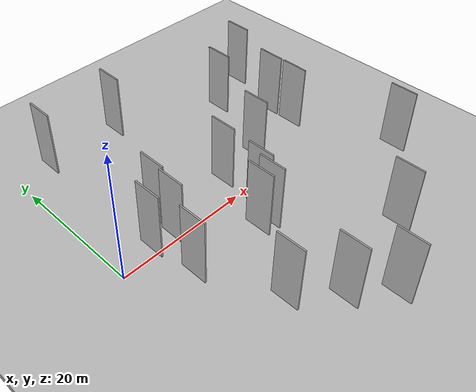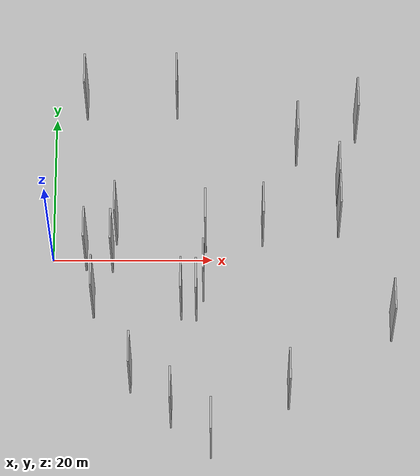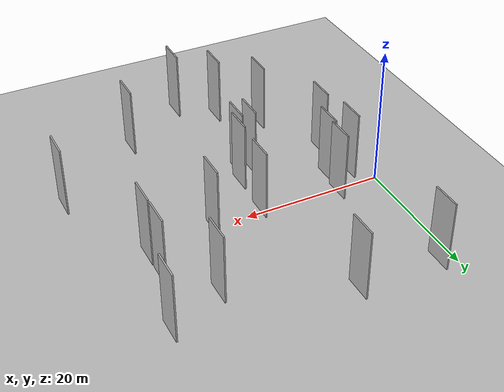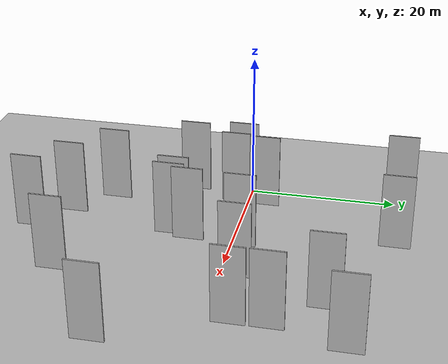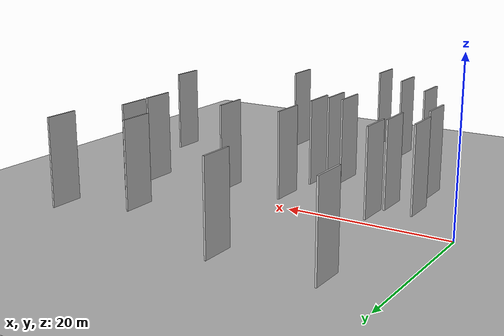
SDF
<?xml version="1.0" encoding="utf-8"?>

<sdf version="1.6">

   <world name="default">

      <gui fullscreen="0">

         <camera name="user_camera">

            <pose>-15 0 4.57585 0 0 0</pose>

            <view_controller>orbit</view_controller>

         </camera>

      </gui>

      <scene>

         <sky>

           <clouds>

             <speed>12</speed>

           </clouds>

         </sky>

         <ambient>0.4 0.4 0.4 1</ambient>

         <background>0.7 0.7 0.7 1</background>

         <shadows>1</shadows>

      </scene>

      <gravity>0 0 -9.8066</gravity>

      <magnetic_field>6e-06 2.3e-05 -4.2e-05</magnetic_field>

      <physics default="0" name="default_physics" type="ode">

         <ode>

            <solver>

               <type>quick</type>

               <iters>10</iters>

               <sor>1.0</sor>

               <use_dynamic_moi_rescaling>0</use_dynamic_moi_rescaling>

            </solver>

            <constraints>

               <cfm>0</cfm>

               <erp>0.2</erp>

               <contact_max_correcting_vel>100</contact_max_correcting_vel>

               <contact_surface_layer>0.001</contact_surface_layer>

            </constraints>

         </ode>

         <max_step_size>0.004</max_step_size>

         <real_time_factor>1</real_time_factor>

         <real_time_update_rate>250</real_time_update_rate>

      </physics>

      <light name="sun" type="directional">

         <cast_shadows>1</cast_shadows>

         <pose>0 0 10 0 0 0</pose>

         <diffuse>0.8 0.8 0.8 1</diffuse>

         <specular>0.2 0.2 0.2 1</specular>

         <attenuation>

            <range>1000</range>

            <constant>0.9</constant>

            <linear>0.01</linear>

            <quadratic>0.001</quadratic>

         </attenuation>

         <direction>-0.5 0.1 -0.9</direction>

      </light>

      <include>

         <name>ground_plane_1</name>

         <uri>model://HANNAS_ground_plane</uri>

         <pose>0 0 0  0 0 0</pose>

      </include>

      <include>

         <name>ground_plane_2</name>

         <uri>model://HANNAS_ground_plane</uri>

         <pose>100 0 0  0 0 0</pose>

      </include>

      <model name="HANNAS_wall_1">

         <static>1</static>

         <pose frame="">17.9819 -7.4302 2.5 0.000000 0.000000 1.570796</pose>

         <link name="link">

            <pose frame="">0 0 5.00 0 0 0</pose>

            <collision name="collision">

               <geometry>

                  <box>

                     <size>4.00 0.2 10.00</size>

                  </box>

               </geometry>

               <max_contacts>10</max_contacts>

               <surface>

                  <contact>

                     <ode/>

                  </contact>

                  <bounce/>

                  <friction>

                     <torsional>

                        <ode/>

                     </torsional>

                     <ode/>

                  </friction>

               </surface>

            </collision>

            <visual name="visual">

               <cast_shadows>0</cast_shadows>

               <geometry>

                  <box>

                     <size>4.00 0.2 10.00</size>

                  </box>

               </geometry>

               <material>

                  <script>

                     <uri>model://HANNAS_wall/materials/scripts</uri>

                     <uri>model://HANNAS_wall/materials/textures</uri>

                     <name>vrc/HANNAS_wall</name>

                  </script>

               </material>

            </visual>

            <self_collide>0</self_collide>

            <enable_wind>0</enable_wind>

            <kinematic>0</kinematic>

         </link>

      </model>

      <model name="HANNAS_wall_2">

         <static>1</static>

         <pose frame="">26.2540 2.7320 2.5 0.000000 0.000000 1.570796</pose>

         <link name="link">

            <pose frame="">0 0 5.00 0 0 0</pose>

            <collision name="collision">

               <geometry>

                  <box>

                     <size>4.00 0.2 10.00</size>

                  </box>

               </geometry>

               <max_contacts>10</max_contacts>

               <surface>

                  <contact>

                     <ode/>

                  </contact>

                  <bounce/>

                  <friction>

                     <torsional>

                        <ode/>

                     </torsional>

                     <ode/>

                  </friction>

               </surface>

            </collision>

            <visual name="visual">

               <cast_shadows>0</cast_shadows>

               <geometry>

                  <box>

                     <size>4.00 0.2 10.00</size>

                  </box>

               </geometry>

               <material>

                  <script>

                     <uri>model://HANNAS_wall/materials/scripts</uri>

                     <uri>model://HANNAS_wall/materials/textures</uri>

                     <name>vrc/HANNAS_wall</name>

                  </script>

               </material>

            </visual>

            <self_collide>0</self_collide>

            <enable_wind>0</enable_wind>

            <kinematic>0</kinematic>

         </link>

      </model>

      <model name="HANNAS_wall_3">

         <static>1</static>

         <pose frame="">7.5786 -0.8188 2.5 0.000000 0.000000 1.570796</pose>

         <link name="link">

            <pose frame="">0 0 5.00 0 0 0</pose>

            <collision name="collision">

               <geometry>

                  <box>

                     <size>4.00 0.2 10.00</size>

                  </box>

               </geometry>

               <max_contacts>10</max_contacts>

               <surface>

                  <contact>

                     <ode/>

                  </contact>

                  <bounce/>

                  <friction>

                     <torsional>

                        <ode/>

                     </torsional>

                     <ode/>

                  </friction>

               </surface>

            </collision>

            <visual name="visual">

               <cast_shadows>0</cast_shadows>

               <geometry>

                  <box>

                     <size>4.00 0.2 10.00</size>

                  </box>

               </geometry>

               <material>

                  <script>

                     <uri>model://HANNAS_wall/materials/scripts</uri>

                     <uri>model://HANNAS_wall/materials/textures</uri>

                     <name>vrc/HANNAS_wall</name>

                  </script>

               </material>

            </visual>

            <self_collide>0</self_collide>

            <enable_wind>0</enable_wind>

            <kinematic>0</kinematic>

         </link>

      </model>

      <model name="HANNAS_wall_4">

         <static>1</static>

         <pose frame="">19.1340 1.9223 2.5 0.000000 0.000000 1.570796</pose>

         <link name="link">

            <pose frame="">0 0 5.00 0 0 0</pose>

            <collision name="collision">

               <geometry>

                  <box>

                     <size>4.00 0.2 10.00</size>

                  </box>

               </geometry>

               <max_contacts>10</max_contacts>

               <surface>

                  <contact>

                     <ode/>

                  </contact>

                  <bounce/>

                  <friction>

                     <torsional>

                        <ode/>

                     </torsional>

                     <ode/>

                  </friction>

               </surface>

            </collision>

            <visual name="visual">

               <cast_shadows>0</cast_shadows>

               <geometry>

                  <box>

                     <size>4.00 0.2 10.00</size>

                  </box>

               </geometry>

               <material>

                  <script>

                     <uri>model://HANNAS_wall/materials/scripts</uri>

                     <uri>model://HANNAS_wall/materials/textures</uri>

                     <name>vrc/HANNAS_wall</name>

                  </script>

               </material>

            </visual>

            <self_collide>0</self_collide>

            <enable_wind>0</enable_wind>

            <kinematic>0</kinematic>

         </link>

      </model>

      <model name="HANNAS_wall_5">

         <static>1</static>

         <pose frame="">35.7650 3.9659 2.5 0.000000 0.000000 1.570796</pose>

         <link name="link">

            <pose frame="">0 0 5.00 0 0 0</pose>

            <collision name="collision">

               <geometry>

                  <box>

                     <size>4.00 0.2 10.00</size>

                  </box>

               </geometry>

               <max_contacts>10</max_contacts>

               <surface>

                  <contact>

                     <ode/>

                  </contact>

                  <bounce/>

                  <friction>

                     <torsional>

                        <ode/>

                     </torsional>

                     <ode/>

                  </friction>

               </surface>

            </collision>

            <visual name="visual">

               <cast_shadows>0</cast_shadows>

               <geometry>

                  <box>

                     <size>4.00 0.2 10.00</size>

                  </box>

               </geometry>

               <material>

                  <script>

                     <uri>model://HANNAS_wall/materials/scripts</uri>

                     <uri>model://HANNAS_wall/materials/textures</uri>

                     <name>vrc/HANNAS_wall</name>

                  </script>

               </material>

            </visual>

            <self_collide>0</self_collide>

            <enable_wind>0</enable_wind>

            <kinematic>0</kinematic>

         </link>

      </model>

      <model name="HANNAS_wall_6">

         <static>1</static>

         <pose frame="">9.9656 -16.9954 2.5 0.000000 0.000000 1.570796</pose>

         <link name="link">

            <pose frame="">0 0 5.00 0 0 0</pose>

            <collision name="collision">

               <geometry>

                  <box>

                     <size>4.00 0.2 10.00</size>

                  </box>

               </geometry>

               <max_contacts>10</max_contacts>

               <surface>

                  <contact>

                     <ode/>

                  </contact>

                  <bounce/>

                  <friction>

                     <torsional>

                        <ode/>

                     </torsional>

                     <ode/>

                  </friction>

               </surface>

            </collision>

            <visual name="visual">

               <cast_shadows>0</cast_shadows>

               <geometry>

                  <box>

                     <size>4.00 0.2 10.00</size>

                  </box>

               </geometry>

               <material>

                  <script>

                     <uri>model://HANNAS_wall/materials/scripts</uri>

                     <uri>model://HANNAS_wall/materials/textures</uri>

                     <name>vrc/HANNAS_wall</name>

                  </script>

               </material>

            </visual>

            <self_collide>0</self_collide>

            <enable_wind>0</enable_wind>

            <kinematic>0</kinematic>

         </link>

      </model>

      <model name="HANNAS_wall_7">

         <static>1</static>

         <pose frame="">4.3015 -0.4936 2.5 0.000000 0.000000 1.570796</pose>

         <link name="link">

            <pose frame="">0 0 5.00 0 0 0</pose>

            <collision name="collision">

               <geometry>

                  <box>

                     <size>4.00 0.2 10.00</size>

                  </box>

               </geometry>

               <max_contacts>10</max_contacts>

               <surface>

                  <contact>

                     <ode/>

                  </contact>

                  <bounce/>

                  <friction>

                     <torsional>

                        <ode/>

                     </torsional>

                     <ode/>

                  </friction>

               </surface>

            </collision>

            <visual name="visual">

               <cast_shadows>0</cast_shadows>

               <geometry>

                  <box>

                     <size>4.00 0.2 10.00</size>

                  </box>

               </geometry>

               <material>

                  <script>

                     <uri>model://HANNAS_wall/materials/scripts</uri>

                     <uri>model://HANNAS_wall/materials/textures</uri>

                     <name>vrc/HANNAS_wall</name>

                  </script>

               </material>

            </visual>

            <self_collide>0</self_collide>

            <enable_wind>0</enable_wind>

            <kinematic>0</kinematic>

         </link>

      </model>

      <model name="HANNAS_wall_8">

         <static>1</static>

         <pose frame="">8.0327 3.0048 2.5 0.000000 0.000000 1.570796</pose>

         <link name="link">

            <pose frame="">0 0 5.00 0 0 0</pose>

            <collision name="collision">

               <geometry>

                  <box>

                     <size>4.00 0.2 10.00</size>

                  </box>

               </geometry>

               <max_contacts>10</max_contacts>

               <surface>

                  <contact>

                     <ode/>

                  </contact>

                  <bounce/>

                  <friction>

                     <torsional>

                        <ode/>

                     </torsional>

                     <ode/>

                  </friction>

               </surface>

            </collision>

            <visual name="visual">

               <cast_shadows>0</cast_shadows>

               <geometry>

                  <box>

                     <size>4.00 0.2 10.00</size>

                  </box>

               </geometry>

               <material>

                  <script>

                     <uri>model://HANNAS_wall/materials/scripts</uri>

                     <uri>model://HANNAS_wall/materials/textures</uri>

                     <name>vrc/HANNAS_wall</name>

                  </script>

               </material>

            </visual>

            <self_collide>0</self_collide>

            <enable_wind>0</enable_wind>

            <kinematic>0</kinematic>

         </link>

      </model>

      <model name="HANNAS_wall_9">

         <static>1</static>

         <pose frame="">18.8699 -4.8284 2.5 0.000000 0.000000 1.570796</pose>

         <link name="link">

            <pose frame="">0 0 5.00 0 0 0</pose>

            <collision name="collision">

               <geometry>

                  <box>

                     <size>4.00 0.2 10.00</size>

                  </box>

               </geometry>

               <max_contacts>10</max_contacts>

               <surface>

                  <contact>

                     <ode/>

                  </contact>

                  <bounce/>

                  <friction>

                     <torsional>

                        <ode/>

                     </torsional>

                     <ode/>

                  </friction>

               </surface>

            </collision>

            <visual name="visual">

               <cast_shadows>0</cast_shadows>

               <geometry>

                  <box>

                     <size>4.00 0.2 10.00</size>

                  </box>

               </geometry>

               <material>

                  <script>

                     <uri>model://HANNAS_wall/materials/scripts</uri>

                     <uri>model://HANNAS_wall/materials/textures</uri>

                     <name>vrc/HANNAS_wall</name>

                  </script>

               </material>

            </visual>

            <self_collide>0</self_collide>

            <enable_wind>0</enable_wind>

            <kinematic>0</kinematic>

         </link>

      </model>

      <model name="HANNAS_wall_10">

         <static>1</static>

         <pose frame="">16.1311 -7.2977 2.5 0.000000 0.000000 1.570796</pose>

         <link name="link">

            <pose frame="">0 0 5.00 0 0 0</pose>

            <collision name="collision">

               <geometry>

                  <box>

                     <size>4.00 0.2 10.00</size>

                  </box>

               </geometry>

               <max_contacts>10</max_contacts>

               <surface>

                  <contact>

                     <ode/>

                  </contact>

                  <bounce/>

                  <friction>

                     <torsional>

                        <ode/>

                     </torsional>

                     <ode/>

                  </friction>

               </surface>

            </collision>

            <visual name="visual">

               <cast_shadows>0</cast_shadows>

               <geometry>

                  <box>

                     <size>4.00 0.2 10.00</size>

                  </box>

               </geometry>

               <material>

                  <script>

                     <uri>model://HANNAS_wall/materials/scripts</uri>

                     <uri>model://HANNAS_wall/materials/textures</uri>

                     <name>vrc/HANNAS_wall</name>

                  </script>

               </material>

            </visual>

            <self_collide>0</self_collide>

            <enable_wind>0</enable_wind>

            <kinematic>0</kinematic>

         </link>

      </model>

      <model name="HANNAS_wall_11">

         <static>1</static>

         <pose frame="">15.5418 20.9230 2.5 0.000000 0.000000 1.570796</pose>

         <link name="link">

            <pose frame="">0 0 5.00 0 0 0</pose>

            <collision name="collision">

               <geometry>

                  <box>

                     <size>4.00 0.2 10.00</size>

                  </box>

               </geometry>

               <max_contacts>10</max_contacts>

               <surface>

                  <contact>

                     <ode/>

                  </contact>

                  <bounce/>

                  <friction>

                     <torsional>

                        <ode/>

                     </torsional>

                     <ode/>

                  </friction>

               </surface>

            </collision>

            <visual name="visual">

               <cast_shadows>0</cast_shadows>

               <geometry>

                  <box>

                     <size>4.00 0.2 10.00</size>

                  </box>

               </geometry>

               <material>

                  <script>

                     <uri>model://HANNAS_wall/materials/scripts</uri>

                     <uri>model://HANNAS_wall/materials/textures</uri>

                     <name>vrc/HANNAS_wall</name>

                  </script>

               </material>

            </visual>

            <self_collide>0</self_collide>

            <enable_wind>0</enable_wind>

            <kinematic>0</kinematic>

         </link>

      </model>

      <model name="HANNAS_wall_12">

         <static>1</static>

         <pose frame="">30.6517 14.0721 2.5 0.000000 0.000000 1.570796</pose>

         <link name="link">

            <pose frame="">0 0 5.00 0 0 0</pose>

            <collision name="collision">

               <geometry>

                  <box>

                     <size>4.00 0.2 10.00</size>

                  </box>

               </geometry>

               <max_contacts>10</max_contacts>

               <surface>

                  <contact>

                     <ode/>

                  </contact>

                  <bounce/>

                  <friction>

                     <torsional>

                        <ode/>

                     </torsional>

                     <ode/>

                  </friction>

               </surface>

            </collision>

            <visual name="visual">

               <cast_shadows>0</cast_shadows>

               <geometry>

                  <box>

                     <size>4.00 0.2 10.00</size>

                  </box>

               </geometry>

               <material>

                  <script>

                     <uri>model://HANNAS_wall/materials/scripts</uri>

                     <uri>model://HANNAS_wall/materials/textures</uri>

                     <name>vrc/HANNAS_wall</name>

                  </script>

               </material>

            </visual>

            <self_collide>0</self_collide>

            <enable_wind>0</enable_wind>

            <kinematic>0</kinematic>

         </link>

      </model>

      <model name="HANNAS_wall_13">

         <static>1</static>

         <pose frame="">38.2051 17.3621 2.5 0.000000 0.000000 1.570796</pose>

         <link name="link">

            <pose frame="">0 0 5.00 0 0 0</pose>

            <collision name="collision">

               <geometry>

                  <box>

                     <size>4.00 0.2 10.00</size>

                  </box>

               </geometry>

               <max_contacts>10</max_contacts>

               <surface>

                  <contact>

                     <ode/>

                  </contact>

                  <bounce/>

                  <friction>

                     <torsional>

                        <ode/>

                     </torsional>

                     <ode/>

                  </friction>

               </surface>

            </collision>

            <visual name="visual">

               <cast_shadows>0</cast_shadows>

               <geometry>

                  <box>

                     <size>4.00 0.2 10.00</size>

                  </box>

               </geometry>

               <material>

                  <script>

                     <uri>model://HANNAS_wall/materials/scripts</uri>

                     <uri>model://HANNAS_wall/materials/textures</uri>

                     <name>vrc/HANNAS_wall</name>

                  </script>

               </material>

            </visual>

            <self_collide>0</self_collide>

            <enable_wind>0</enable_wind>

            <kinematic>0</kinematic>

         </link>

      </model>

      <model name="HANNAS_wall_14">

         <static>1</static>

         <pose frame="">19.7613 -25.5231 2.5 0.000000 0.000000 1.570796</pose>

         <link name="link">

            <pose frame="">0 0 5.00 0 0 0</pose>

            <collision name="collision">

               <geometry>

                  <box>

                     <size>4.00 0.2 10.00</size>

                  </box>

               </geometry>

               <max_contacts>10</max_contacts>

               <surface>

                  <contact>

                     <ode/>

                  </contact>

                  <bounce/>

                  <friction>

                     <torsional>

                        <ode/>

                     </torsional>

                     <ode/>

                  </friction>

               </surface>

            </collision>

            <visual name="visual">

               <cast_shadows>0</cast_shadows>

               <geometry>

                  <box>

                     <size>4.00 0.2 10.00</size>

                  </box>

               </geometry>

               <material>

                  <script>

                     <uri>model://HANNAS_wall/materials/scripts</uri>

                     <uri>model://HANNAS_wall/materials/textures</uri>

                     <name>vrc/HANNAS_wall</name>

                  </script>

               </material>

            </visual>

            <self_collide>0</self_collide>

            <enable_wind>0</enable_wind>

            <kinematic>0</kinematic>

         </link>

      </model>

      <model name="HANNAS_wall_15">

         <static>1</static>

         <pose frame="">4.0378 20.8242 2.5 0.000000 0.000000 1.570796</pose>

         <link name="link">

            <pose frame="">0 0 5.00 0 0 0</pose>

            <collision name="collision">

               <geometry>

                  <box>

                     <size>4.00 0.2 10.00</size>

                  </box>

               </geometry>

               <max_contacts>10</max_contacts>

               <surface>

                  <contact>

                     <ode/>

                  </contact>

                  <bounce/>

                  <friction>

                     <torsional>

                        <ode/>

                     </torsional>

                     <ode/>

                  </friction>

               </surface>

            </collision>

            <visual name="visual">

               <cast_shadows>0</cast_shadows>

               <geometry>

                  <box>

                     <size>4.00 0.2 10.00</size>

                  </box>

               </geometry>

               <material>

                  <script>

                     <uri>model://HANNAS_wall/materials/scripts</uri>

                     <uri>model://HANNAS_wall/materials/textures</uri>

                     <name>vrc/HANNAS_wall</name>

                  </script>

               </material>

            </visual>

            <self_collide>0</self_collide>

            <enable_wind>0</enable_wind>

            <kinematic>0</kinematic>

         </link>

      </model>

      <model name="HANNAS_wall_16">

         <static>1</static>

         <pose frame="">41.9576 -10.2538 2.5 0.000000 0.000000 1.570796</pose>

         <link name="link">

            <pose frame="">0 0 5.00 0 0 0</pose>

            <collision name="collision">

               <geometry>

                  <box>

                     <size>4.00 0.2 10.00</size>

                  </box>

               </geometry>

               <max_contacts>10</max_contacts>

               <surface>

                  <contact>

                     <ode/>

                  </contact>

                  <bounce/>

                  <friction>

                     <torsional>

                        <ode/>

                     </torsional>

                     <ode/>

                  </friction>

               </surface>

            </collision>

            <visual name="visual">

               <cast_shadows>0</cast_shadows>

               <geometry>

                  <box>

                     <size>4.00 0.2 10.00</size>

                  </box>

               </geometry>

               <material>

                  <script>

                     <uri>model://HANNAS_wall/materials/scripts</uri>

                     <uri>model://HANNAS_wall/materials/textures</uri>

                     <name>vrc/HANNAS_wall</name>

                  </script>

               </material>

            </visual>

            <self_collide>0</self_collide>

            <enable_wind>0</enable_wind>

            <kinematic>0</kinematic>

         </link>

      </model>

      <model name="HANNAS_wall_17">

         <static>1</static>

         <pose frame="">35.7203 8.3388 2.5 0.000000 0.000000 1.570796</pose>

         <link name="link">

            <pose frame="">0 0 5.00 0 0 0</pose>

            <collision name="collision">

               <geometry>

                  <box>

                     <size>4.00 0.2 10.00</size>

                  </box>

               </geometry>

               <max_contacts>10</max_contacts>

               <surface>

                  <contact>

                     <ode/>

                  </contact>

                  <bounce/>

                  <friction>

                     <torsional>

                        <ode/>

                     </torsional>

                     <ode/>

                  </friction>

               </surface>

            </collision>

            <visual name="visual">

               <cast_shadows>0</cast_shadows>

               <geometry>

                  <box>

                     <size>4.00 0.2 10.00</size>

                  </box>

               </geometry>

               <material>

                  <script>

                     <uri>model://HANNAS_wall/materials/scripts</uri>

                     <uri>model://HANNAS_wall/materials/textures</uri>

                     <name>vrc/HANNAS_wall</name>

                  </script>

               </material>

            </visual>

            <self_collide>0</self_collide>

            <enable_wind>0</enable_wind>

            <kinematic>0</kinematic>

         </link>

      </model>

      <model name="HANNAS_wall_18">

         <static>1</static>

         <pose frame="">14.9230 -21.5881 2.5 0.000000 0.000000 1.570796</pose>

         <link name="link">

            <pose frame="">0 0 5.00 0 0 0</pose>

            <collision name="collision">

               <geometry>

                  <box>

                     <size>4.00 0.2 10.00</size>

                  </box>

               </geometry>

               <max_contacts>10</max_contacts>

               <surface>

                  <contact>

                     <ode/>

                  </contact>

                  <bounce/>

                  <friction>

                     <torsional>

                        <ode/>

                     </torsional>

                     <ode/>

                  </friction>

               </surface>

            </collision>

            <visual name="visual">

               <cast_shadows>0</cast_shadows>

               <geometry>

                  <box>

                     <size>4.00 0.2 10.00</size>

                  </box>

               </geometry>

               <material>

                  <script>

                     <uri>model://HANNAS_wall/materials/scripts</uri>

                     <uri>model://HANNAS_wall/materials/textures</uri>

                     <name>vrc/HANNAS_wall</name>

                  </script>

               </material>

            </visual>

            <self_collide>0</self_collide>

            <enable_wind>0</enable_wind>

            <kinematic>0</kinematic>

         </link>

      </model>

      <model name="HANNAS_wall_19">

         <static>1</static>

         <pose frame="">29.2010 -19.2537 2.5 0.000000 0.000000 1.570796</pose>

         <link name="link">

            <pose frame="">0 0 5.00 0 0 0</pose>

            <collision name="collision">

               <geometry>

                  <box>

                     <size>4.00 0.2 10.00</size>

                  </box>

               </geometry>

               <max_contacts>10</max_contacts>

               <surface>

                  <contact>

                     <ode/>

                  </contact>

                  <bounce/>

                  <friction>

                     <torsional>

                        <ode/>

                     </torsional>

                     <ode/>

                  </friction>

               </surface>

            </collision>

            <visual name="visual">

               <cast_shadows>0</cast_shadows>

               <geometry>

                  <box>

                     <size>4.00 0.2 10.00</size>

                  </box>

               </geometry>

               <material>

                  <script>

                     <uri>model://HANNAS_wall/materials/scripts</uri>

                     <uri>model://HANNAS_wall/materials/textures</uri>

                     <name>vrc/HANNAS_wall</name>

                  </script>

               </material>

            </visual>

            <self_collide>0</self_collide>

            <enable_wind>0</enable_wind>

            <kinematic>0</kinematic>

         </link>

      </model>

      <model name="HANNAS_wall_20">

         <static>1</static>

         <pose frame="">5.2910 -6.9708 2.5 0.000000 0.000000 1.570796</pose>

         <link name="link">

            <pose frame="">0 0 5.00 0 0 0</pose>

            <collision name="collision">

               <geometry>

                  <box>

                     <size>4.00 0.2 10.00</size>

                  </box>

               </geometry>

               <max_contacts>10</max_contacts>

               <surface>

                  <contact>

                     <ode/>

                  </contact>

                  <bounce/>

                  <friction>

                     <torsional>

                        <ode/>

                     </torsional>

                     <ode/>

                  </friction>

               </surface>

            </collision>

            <visual name="visual">

               <cast_shadows>0</cast_shadows>

               <geometry>

                  <box>

                     <size>4.00 0.2 10.00</size>

                  </box>

               </geometry>

               <material>

                  <script>

                     <uri>model://HANNAS_wall/materials/scripts</uri>

                     <uri>model://HANNAS_wall/materials/textures</uri>

                     <name>vrc/HANNAS_wall</name>

                  </script>

               </material>

            </visual>

            <self_collide>0</self_collide>

            <enable_wind>0</enable_wind>

            <kinematic>0</kinematic>

         </link>

      </model>

   </world>

</sdf>

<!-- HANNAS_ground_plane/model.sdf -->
<sdf version="1.4">
<model name="HANNAS_ground_plane">
  <static>true</static>
    <link name="link">
      <collision name="collision">
        <geometry>
          <plane>
            <normal>0 0 1</normal>
            <size>1000 1000</size>
          </plane>
        </geometry>
        <surface>
          <friction>
            <ode>
              <mu>100</mu>
              <mu2>50</mu2>
            </ode>
          </friction>
        </surface>
      </collision>
      <visual name="visual">
        <cast_shadows>false</cast_shadows>
        <geometry>
          <plane>
            <normal>0 0 1</normal>
            <size>1000 1000</size>
          </plane>
        </geometry>
        <material>
          <script>
            <uri>model://HANNAS_ground_plane/materials/scripts/HANNAS_ground_plane.material</uri>
	    <uri>model://HANNAS_ground_plane/materials/textures</uri>
            <name>HANNASGroundPlane/Image</name>
          </script>
        </material>
      </visual>
    </link>
  </model>
</sdf>
